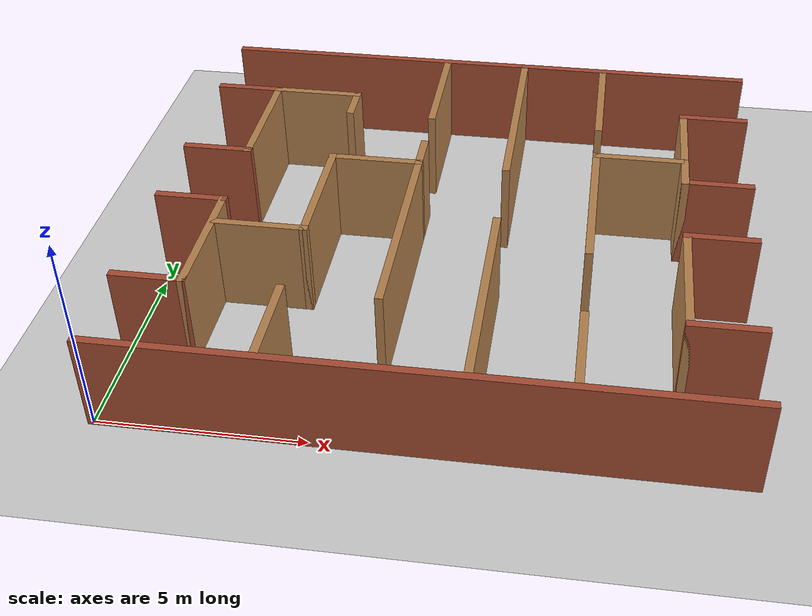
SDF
<sdf version="1.6">
 <world name="default">
  <light name="sun" type="directional">
   <pose>0 0 10 0 -0 0</pose>
   <diffuse>0.8 0.8 0.8 1</diffuse>
   <specular>0.1 0.1 0.1 1</specular>
   <attenuation>
    <range>1000</range>
    <constant>0.9</constant>
    <linear>0.01</linear>
    <quadratic>0.001</quadratic>
   </attenuation>
   <direction>-0.5 0.5 -1</direction>
  </light>
  <model name="ground_plane">
   <static>1</static>
   <link name="link">
    <collision name="collision">
     <geometry><plane><normal>0 0 1</normal><size>100 100</size></plane></geometry>
     <surface><friction><ode><mu>100</mu><mu2>50</mu2></ode></friction></surface>
    </collision>
    <visual name="visual">
     <cast_shadows>0</cast_shadows>
     <geometry><plane><normal>0 0 1</normal><size>100 100</size></plane></geometry>
     <material>
      <script><uri>file://media/materials/scripts/gazebo.material</uri><name>Gazebo/Grey</name></script>
     </material>
    </visual>
   </link>
  </model>
  <gravity>0 0 -9.8</gravity>
  <magnetic_field>6e-06 2.3e-05 -4.2e-05</magnetic_field>
  <atmosphere type="adiabatic"/>
  <physics name="default_physics" default="0" type="ode">
   <max_step_size>0.001</max_step_size>
   <real_time_factor>1</real_time_factor>
   <real_time_update_rate>1000</real_time_update_rate>
  </physics>
  <scene><ambient>0.4 0.4 0.4 1</ambient><background>0.7 0.7 0.7 1</background><shadows>1</shadows></scene>
  <spherical_coordinates>
   <surface_model>EARTH_WGS84</surface_model>
   <latitude_deg>0</latitude_deg>
   <longitude_deg>0</longitude_deg>
   <elevation>0</elevation>
   <heading_deg>0</heading_deg>
  </spherical_coordinates>
  <model name="MAZE2_chuanchuan">
   <pose>7.4 6.7 0 0 -0 0</pose>
   <link name="Wall_0">
    <collision name="Wall_0_Collision">
     <geometry><box><size>15 0.2 2.5</size></box></geometry>
     <pose>0 0 1.25 0 -0 0</pose>
    </collision>
    <visual name="Wall_0_Visual">
     <pose>0 0 1.25 0 -0 0</pose>
     <geometry><box><size>15 0.2 2.5</size></box></geometry>
     <material>
      <script><uri>file://media/materials/scripts/gazebo.material</uri><name>Gazebo/Bricks</name></script>
      <ambient>1 1 1 1</ambient>
     </material>
    </visual>
    <pose>0 -6.7 0 0 -0 0</pose>
   </link>
   <link name="Wall_10">
    <collision name="Wall_10_Collision">
     <geometry><box><size>2.5 0.2 2.5</size></box></geometry>
     <pose>0 0 1.25 0 -0 0</pose>
    </collision>
    <visual name="Wall_10_Visual">
     <pose>0 0 1.25 0 -0 0</pose>
     <geometry><box><size>2.5 0.2 2.5</size></box></geometry>
     <material>
      <script><uri>file://media/materials/scripts/gazebo.material</uri><name>Gazebo/Wood</name></script>
      <ambient>1 1 1 1</ambient>
     </material>
    </visual>
    <pose>-3.45 -5.55 0 0 -0 1.5708</pose>
   </link>
   <link name="Wall_12">
    <collision name="Wall_12_Collision">
     <geometry><box><size>5.75 0.2 2.5</size></box></geometry>
     <pose>0 0 1.25 0 -0 0</pose>
    </collision>
    <visual name="Wall_12_Visual">
     <pose>0 0 1.25 0 -0 0</pose>
     <geometry><box><size>5.75 0.2 2.5</size></box></geometry>
     <material>
      <script><uri>file://media/materials/scripts/gazebo.material</uri><name>Gazebo/Wood</name></script>
      <ambient>1 1 1 1</ambient>
     </material>
    </visual>
    <pose>1.15 -3.925 0 0 -0 1.5708</pose>
   </link>
   <link name="Wall_14">
    <collision name="Wall_14_Collision">
     <geometry><box><size>2.5 0.2 2.5</size></box></geometry>
     <pose>0 0 1.25 0 -0 0</pose>
    </collision>
    <visual name="Wall_14_Visual">
     <pose>0 0 1.25 0 -0 0</pose>
     <geometry><box><size>2.5 0.2 2.5</size></box></geometry>
     <material>
      <script><uri>file://media/materials/scripts/gazebo.material</uri><name>Gazebo/Wood</name></script>
      <ambient>1 1 1 1</ambient>
     </material>
    </visual>
    <pose>3.45 -5.55 0 0 -0 1.5708</pose>
   </link>
   <link name="Wall_155">
    <collision name="Wall_155_Collision">
     <geometry><box><size>2.5 0.2 2.5</size></box></geometry>
     <pose>0 0 1.25 0 -0 0</pose>
    </collision>
    <visual name="Wall_155_Visual">
     <pose>0 0 1.25 0 -0 0</pose>
     <geometry><box><size>2.5 0.2 2.5</size></box></geometry>
     <material>
      <script><uri>file://media/materials/scripts/gazebo.material</uri><name>Gazebo/Wood</name></script>
      <ambient>1 1 1 1</ambient>
     </material>
    </visual>
    <pose>-4.6 4.4 0 0 -0 0</pose>
   </link>
   <link name="Wall_156">
    <collision name="Wall_156_Collision">
     <geometry><box><size>1.15 0.2 2.5</size></box></geometry>
     <pose>0 0 1.25 0 -0 0</pose>
    </collision>
    <visual name="Wall_156_Visual">
     <pose>0 0 1.25 0 -0 0</pose>
     <geometry><box><size>1.15 0.2 2.5</size></box></geometry>
     <material>
      <script><uri>file://media/materials/scripts/gazebo.material</uri><name>Gazebo/Wood</name></script>
      <ambient>1 1 1 1</ambient>
     </material>
    </visual>
    <pose>-3.45 3.925 0 0 0 -1.5708</pose>
   </link>
   <link name="Wall_158">
    <collision name="Wall_158_Collision">
     <geometry><box><size>3.45 0.2 2.5</size></box></geometry>
     <pose>0 0 1.25 0 -0 0</pose>
    </collision>
    <visual name="Wall_158_Visual">
     <pose>0 0 1.25 0 -0 0</pose>
     <geometry><box><size>3.45 0.2 2.5</size></box></geometry>
     <material>
      <script><uri>file://media/materials/scripts/gazebo.material</uri><name>Gazebo/Wood</name></script>
      <ambient>1 1 1 1</ambient>
     </material>
    </visual>
    <pose>-1.15 5.075 0 0 0 -1.5708</pose>
   </link>
   <link name="Wall_16">
    <collision name="Wall_16_Collision">
     <geometry><box><size>2.50035 0.2 2.5</size></box></geometry>
     <pose>0 0 1.25 0 -0 0</pose>
    </collision>
    <visual name="Wall_16_Visual">
     <pose>0 0 1.25 0 -0 0</pose>
     <geometry><box><size>2.50035 0.2 2.5</size></box></geometry>
     <material>
      <script><uri>file://media/materials/scripts/gazebo.material</uri><name>Gazebo/Wood</name></script>
      <ambient>1 1 1 1</ambient>
     </material>
    </visual>
    <pose>-4.6 -2.1 0 0 -0 0</pose>
   </link>
   <link name="Wall_160">
    <collision name="Wall_160_Collision">
     <geometry><box><size>5.75 0.2 2.5</size></box></geometry>
     <pose>0 0 1.25 0 -0 0</pose>
    </collision>
    <visual name="Wall_160_Visual">
     <pose>0 0 1.25 0 -0 0</pose>
     <geometry><box><size>5.75 0.2 2.5</size></box></geometry>
     <material>
      <script><uri>file://media/materials/scripts/gazebo.material</uri><name>Gazebo/Wood</name></script>
      <ambient>1 1 1 1</ambient>
     </material>
    </visual>
    <pose>1.15 3.925 0 0 0 -1.5708</pose>
   </link>
   <link name="Wall_162">
    <collision name="Wall_162_Collision">
     <geometry><box><size>3.45 0.2 2.5</size></box></geometry>
     <pose>0 0 1.25 0 -0 0</pose>
    </collision>
    <visual name="Wall_162_Visual">
     <pose>0 0 1.25 0 -0 0</pose>
     <geometry><box><size>3.45 0.2 2.5</size></box></geometry>
     <material>
      <script><uri>file://media/materials/scripts/gazebo.material</uri><name>Gazebo/Wood</name></script>
      <ambient>1 1 1 1</ambient>
     </material>
    </visual>
    <pose>3.45 5.075 0 0 0 -1.5708</pose>
   </link>
   <link name="Wall_164">
    <collision name="Wall_164_Collision">
     <geometry><box><size>4.4 0.2 2.5</size></box></geometry>
     <pose>0 0 1.25 0 -0 0</pose>
    </collision>
    <visual name="Wall_164_Visual">
     <pose>0 0 1.25 0 -0 0</pose>
     <geometry><box><size>4.4 0.2 2.5</size></box></geometry>
     <material>
      <script><uri>file://media/materials/scripts/gazebo.material</uri><name>Gazebo/Wood</name></script>
      <ambient>1 1 1 1</ambient>
     </material>
    </visual>
    <pose>3.45 0 0 0 -0 1.5708</pose>
   </link>
   <link name="Wall_165">
    <collision name="Wall_165_Collision">
     <geometry><box><size>2.5 0.2 2.5</size></box></geometry>
     <pose>0 0 1.25 0 -0 0</pose>
    </collision>
    <visual name="Wall_165_Visual">
     <pose>0 0 1.25 0 -0 0</pose>
     <geometry><box><size>2.5 0.2 2.5</size></box></geometry>
     <material>
      <script><uri>file://media/materials/scripts/gazebo.material</uri><name>Gazebo/Wood</name></script>
      <ambient>1 1 1 1</ambient>
     </material>
    </visual>
    <pose>4.6 2.1 0 0 -0 0</pose>
   </link>
   <link name="Wall_166">
    <collision name="Wall_166_Collision">
     <geometry><box><size>2.5 0.2 2.5</size></box></geometry>
     <pose>0 0 1.25 0 -0 0</pose>
    </collision>
    <visual name="Wall_166_Visual">
     <pose>0 0 1.25 0 -0 0</pose>
     <geometry><box><size>2.5 0.2 2.5</size></box></geometry>
     <material>
      <script><uri>file://media/materials/scripts/gazebo.material</uri><name>Gazebo/Wood</name></script>
      <ambient>1 1 1 1</ambient>
     </material>
    </visual>
    <pose>5.75 3.25 0 0 -0 1.5708</pose>
   </link>
   <link name="Wall_167">
    <collision name="Wall_167_Collision">
     <geometry><box><size>1.85 0.2 2.5</size></box></geometry>
     <pose>0 0 1.25 0 -0 0</pose>
    </collision>
    <visual name="Wall_167_Visual">
     <pose>0 0 1.25 0 -0 0</pose>
     <geometry><box><size>1.85 0.2 2.5</size></box></geometry>
     <material>
      <script><uri>file://media/materials/scripts/gazebo.material</uri><name>Gazebo/Bricks</name></script>
      <ambient>1 1 1 1</ambient>
     </material>
    </visual>
    <pose>6.575 4.4 0 0 -0 0</pose>
   </link>
   <link name="Wall_169">
    <collision name="Wall_169_Collision">
     <geometry><box><size>1.15 0.2 2.5</size></box></geometry>
     <pose>0 0 1.25 0 -0 0</pose>
    </collision>
    <visual name="Wall_169_Visual">
     <pose>0 0 1.25 0 -0 0</pose>
     <geometry><box><size>1.15 0.2 2.5</size></box></geometry>
     <material>
      <script><uri>file://media/materials/scripts/gazebo.material</uri><name>Gazebo/Wood</name></script>
      <ambient>1 1 1 1</ambient>
     </material>
    </visual>
    <pose>5.75 1.625 0 0 0 -1.5708</pose>
   </link>
   <link name="Wall_17">
    <collision name="Wall_17_Collision">
     <geometry><box><size>3.45 0.2 2.5</size></box></geometry>
     <pose>0 0 1.25 0 -0 0</pose>
    </collision>
    <visual name="Wall_17_Visual">
     <pose>0 0 1.25 0 -0 0</pose>
     <geometry><box><size>3.45 0.2 2.5</size></box></geometry>
     <material>
      <script><uri>file://media/materials/scripts/gazebo.material</uri><name>Gazebo/Wood</name></script>
      <ambient>1 1 1 1</ambient>
     </material>
    </visual>
    <pose>-3.45 -0.475 0 0 -0 1.5708</pose>
   </link>
   <link name="Wall_170">
    <collision name="Wall_170_Collision">
     <geometry><box><size>1.85 0.2 2.5</size></box></geometry>
     <pose>0 0 1.25 0 -0 0</pose>
    </collision>
    <visual name="Wall_170_Visual">
     <pose>0 0 1.25 0 -0 0</pose>
     <geometry><box><size>1.85 0.2 2.5</size></box></geometry>
     <material>
      <script><uri>file://media/materials/scripts/gazebo.material</uri><name>Gazebo/Bricks</name></script>
      <ambient>1 1 1 1</ambient>
     </material>
    </visual>
    <pose>6.575 1.15 0 0 -0 0</pose>
   </link>
   <link name="Wall_172">
    <collision name="Wall_172_Collision">
     <geometry><box><size>3.45 0.2 2.5</size></box></geometry>
     <pose>0 0 1.25 0 -0 0</pose>
    </collision>
    <visual name="Wall_172_Visual">
     <pose>0 0 1.25 0 -0 0</pose>
     <geometry><box><size>3.45 0.2 2.5</size></box></geometry>
     <material>
      <script><uri>file://media/materials/scripts/gazebo.material</uri><name>Gazebo/Wood</name></script>
      <ambient>1 1 1 1</ambient>
     </material>
    </visual>
    <pose>5.75 -2.775 0 0 -0 1.5708</pose>
   </link>
   <link name="Wall_173">
    <collision name="Wall_173_Collision">
     <geometry><box><size>1.85 0.2 2.5</size></box></geometry>
     <pose>0 0 1.25 0 -0 0</pose>
    </collision>
    <visual name="Wall_173_Visual">
     <pose>0 0 1.25 0 -0 0</pose>
     <geometry><box><size>1.85 0.2 2.5</size></box></geometry>
     <material>
      <script><uri>file://media/materials/scripts/gazebo.material</uri><name>Gazebo/Bricks</name></script>
      <ambient>1 1 1 1</ambient>
     </material>
    </visual>
    <pose>6.575 -1.15 0 0 -0 0</pose>
   </link>
   <link name="Wall_175">
    <collision name="Wall_175_Collision">
     <geometry><box><size>1.85 0.2 2.5</size></box></geometry>
     <pose>0 0 1.25 0 -0 0</pose>
    </collision>
    <visual name="Wall_175_Visual">
     <pose>0 0 1.25 0 -0 0</pose>
     <geometry><box><size>1.85 0.2 2.5</size></box></geometry>
     <material>
      <script><uri>file://media/materials/scripts/gazebo.material</uri><name>Gazebo/Bricks</name></script>
      <ambient>1 1 1 1</ambient>
     </material>
    </visual>
    <pose>6.575 -4.4 0 0 -0 0</pose>
   </link>
   <link name="Wall_18">
    <collision name="Wall_18_Collision">
     <geometry><box><size>2.50015 0.2 2.5</size></box></geometry>
     <pose>0 0 1.25 0 -0 0</pose>
    </collision>
    <visual name="Wall_18_Visual">
     <pose>0 0 1.25 0 -0 0</pose>
     <geometry><box><size>2.50015 0.2 2.5</size></box></geometry>
     <material>
      <script><uri>file://media/materials/scripts/gazebo.material</uri><name>Gazebo/Wood</name></script>
      <ambient>1 1 1 1</ambient>
     </material>
    </visual>
    <pose>-2.3 1.15 0 0 -0 0</pose>
   </link>
   <link name="Wall_19">
    <collision name="Wall_19_Collision">
     <geometry><box><size>5.75 0.2 2.5</size></box></geometry>
     <pose>0 0 1.25 0 -0 0</pose>
    </collision>
    <visual name="Wall_19_Visual">
     <pose>0 0 1.25 0 -0 0</pose>
     <geometry><box><size>5.75 0.2 2.5</size></box></geometry>
     <material>
      <script><uri>file://media/materials/scripts/gazebo.material</uri><name>Gazebo/Wood</name></script>
      <ambient>1 1 1 1</ambient>
     </material>
    </visual>
    <pose>-1.15 -1.625 0 0 0 -1.5708</pose>
   </link>
   <link name="Wall_2">
    <collision name="Wall_2_Collision">
     <geometry><box><size>15 0.2 2.5</size></box></geometry>
     <pose>0 0 1.25 0 -0 0</pose>
    </collision>
    <visual name="Wall_2_Visual">
     <pose>0 0 1.25 0 -0 0</pose>
     <geometry><box><size>15 0.2 2.5</size></box></geometry>
     <material>
      <script><uri>file://media/materials/scripts/gazebo.material</uri><name>Gazebo/Bricks</name></script>
      <ambient>1 1 1 1</ambient>
     </material>
    </visual>
    <pose>0 6.7 0 0 -0 0</pose>
   </link>
   <link name="Wall_21">
    <collision name="Wall_21_Collision">
     <geometry><box><size>1.15 0.2 2.5</size></box></geometry>
     <pose>0 0 1.25 0 -0 0</pose>
    </collision>
    <visual name="Wall_21_Visual">
     <pose>0 0 1.25 0 -0 0</pose>
     <geometry><box><size>1.15 0.2 2.5</size></box></geometry>
     <material>
      <script><uri>file://media/materials/scripts/gazebo.material</uri><name>Gazebo/Wood</name></script>
      <ambient>1 1 1 1</ambient>
     </material>
    </visual>
    <pose>-1.15 1.625 0 0 -0 1.5708</pose>
   </link>
   <link name="Wall_23">
    <collision name="Wall_23_Collision">
     <geometry><box><size>1.85 0.2 2.5</size></box></geometry>
     <pose>0 0 1.25 0 -0 0</pose>
    </collision>
    <visual name="Wall_23_Visual">
     <pose>0 0 1.25 0 -0 0</pose>
     <geometry><box><size>1.85 0.2 2.5</size></box></geometry>
     <material>
      <script><uri>file://media/materials/scripts/gazebo.material</uri><name>Gazebo/Bricks</name></script>
      <ambient>1 1 1 1</ambient>
     </material>
    </visual>
    <pose>-6.575 4.4 0 0 -0 0</pose>
   </link>
   <link name="Wall_24">
    <collision name="Wall_24_Collision">
     <geometry><box><size>3.45 0.2 2.5</size></box></geometry>
     <pose>0 0 1.25 0 -0 0</pose>
    </collision>
    <visual name="Wall_24_Visual">
     <pose>0 0 1.25 0 -0 0</pose>
     <geometry><box><size>3.45 0.2 2.5</size></box></geometry>
     <material>
      <script><uri>file://media/materials/scripts/gazebo.material</uri><name>Gazebo/Wood</name></script>
      <ambient>1 1 1 1</ambient>
     </material>
    </visual>
    <pose>-5.75 2.775 0 0 0 -1.5708</pose>
   </link>
   <link name="Wall_25">
    <collision name="Wall_25_Collision">
     <geometry><box><size>1.85 0.2 2.5</size></box></geometry>
     <pose>0 0 1.25 0 -0 0</pose>
    </collision>
    <visual name="Wall_25_Visual">
     <pose>0 0 1.25 0 -0 0</pose>
     <geometry><box><size>1.85 0.2 2.5</size></box></geometry>
     <material>
      <script><uri>file://media/materials/scripts/gazebo.material</uri><name>Gazebo/Bricks</name></script>
      <ambient>1 1 1 1</ambient>
     </material>
    </visual>
    <pose>-6.575 1.15 0 0 -0 3.14159</pose>
   </link>
   <link name="Wall_6">
    <collision name="Wall_6_Collision">
     <geometry><box><size>1.85 0.2 2.5</size></box></geometry>
     <pose>0 0 1.25 0 -0 0</pose>
    </collision>
    <visual name="Wall_6_Visual">
     <pose>0 0 1.25 0 -0 0</pose>
     <geometry><box><size>1.85 0.2 2.5</size></box></geometry>
     <material>
      <script><uri>file://media/materials/scripts/gazebo.material</uri><name>Gazebo/Bricks</name></script>
      <ambient>1 1 1 1</ambient>
     </material>
    </visual>
    <pose>-6.575 -4.4 0 0 -0 0</pose>
   </link>
   <link name="Wall_7">
    <collision name="Wall_7_Collision">
     <geometry><box><size>3.45 0.2 2.5</size></box></geometry>
     <pose>0 0 1.25 0 -0 0</pose>
    </collision>
    <visual name="Wall_7_Visual">
     <pose>0 0 1.25 0 -0 0</pose>
     <geometry><box><size>3.45 0.2 2.5</size></box></geometry>
     <material>
      <script><uri>file://media/materials/scripts/gazebo.material</uri><name>Gazebo/Wood</name></script>
      <ambient>1 1 1 1</ambient>
     </material>
    </visual>
    <pose>-5.75 -2.775 0 0 -0 1.5708</pose>
   </link>
   <link name="Wall_8">
    <collision name="Wall_8_Collision">
     <geometry><box><size>1.85 0.2 2.5</size></box></geometry>
     <pose>0 0 1.25 0 -0 0</pose>
    </collision>
    <visual name="Wall_8_Visual">
     <pose>0 0 1.25 0 -0 0</pose>
     <geometry><box><size>1.85 0.2 2.5</size></box></geometry>
     <material>
      <script><uri>file://media/materials/scripts/gazebo.material</uri><name>Gazebo/Bricks</name></script>
      <ambient>1 1 1 1</ambient>
     </material>
    </visual>
    <pose>-6.575 -1.15 0 0 -0 3.14159</pose>
   </link>
   <static>1</static>
  </model>
 </world>
</sdf>
